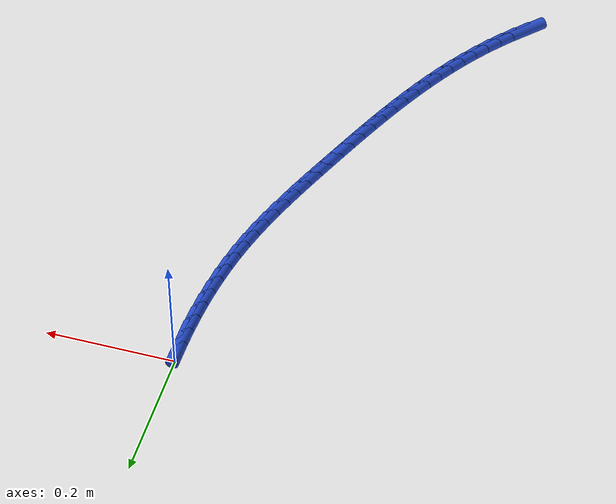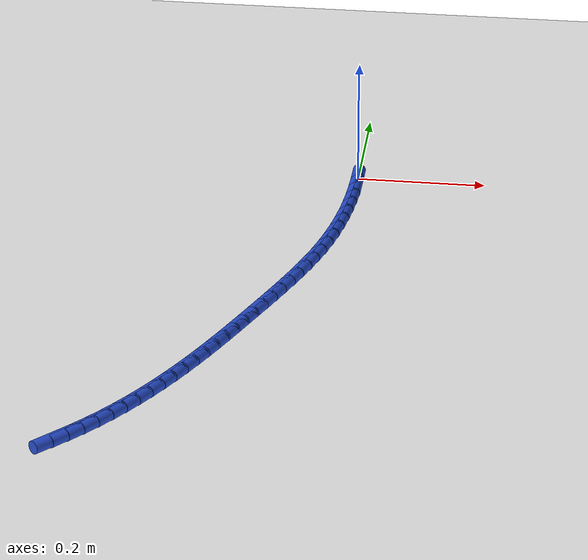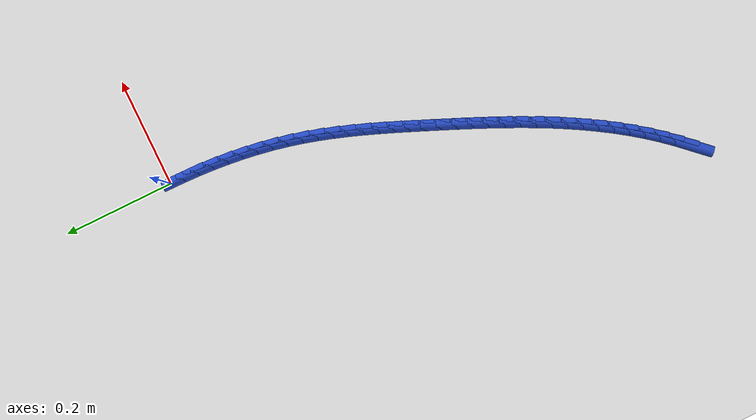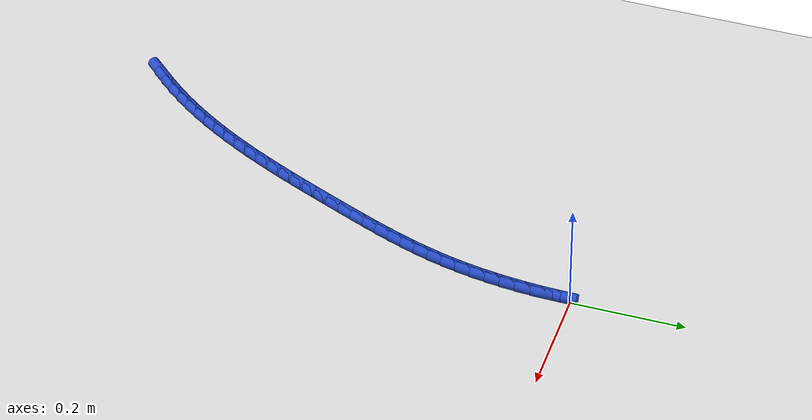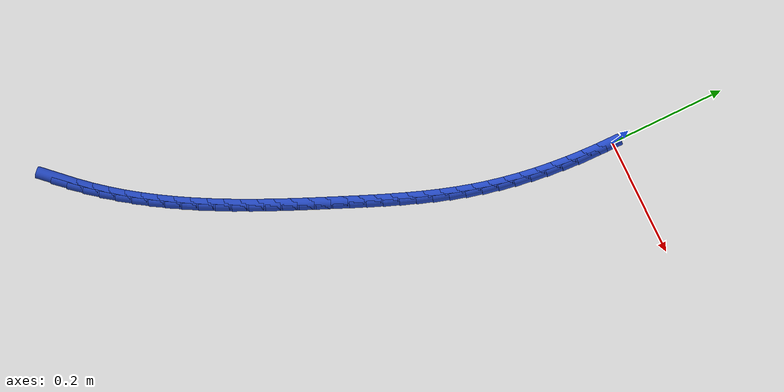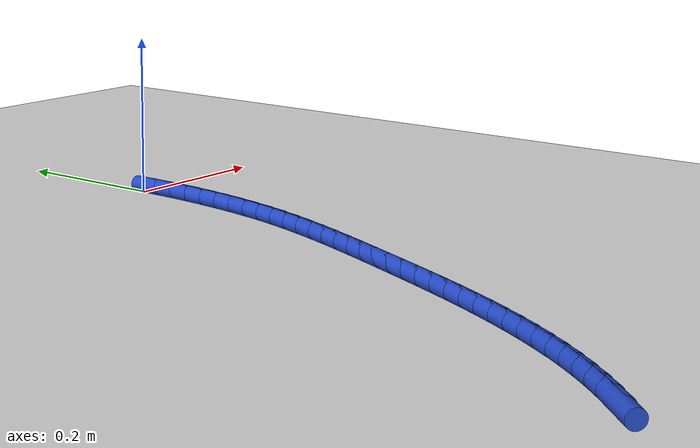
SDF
<sdf version="1.6">
 <world name="default">
  <model name="ground_plane">
   <static>1</static>
   <link name="link">
    <collision name="collision">
     <geometry><plane><normal>0 0 1</normal><size>100 100</size></plane></geometry>
     <surface><friction><ode><mu>100</mu><mu2>50</mu2></ode></friction></surface>
    </collision>
    <visual name="visual">
     <cast_shadows>0</cast_shadows>
     <geometry><plane><normal>0 0 1</normal><size>100 100</size></plane></geometry>
     <material>
      <script><uri>file://media/materials/scripts/gazebo.material</uri><name>Gazebo/WhiteGlow</name></script>
     </material>
    </visual>
   </link>
  </model>
  <model name="line">
   <link name="link_236">
    <pose>-0.34181940846527276 -0.8490513845991398 0.01 0 1.57 0.8167684196229954</pose>
    <collision name="collision">
     <geometry><cylinder><radius>0.01</radius><length>0.08</length></cylinder></geometry>
    </collision>
    <visual name="visual">
     <material>
      <script><name>Gazebo/Blue</name><uri>file://media/materials/scripts/gazebo.material</uri></script>
     </material>
     <geometry><cylinder><radius>0.01</radius><length>0.08</length></cylinder></geometry>
    </visual>
   </link>
   <link name="link_237">
    <pose>-0.3230266619147617 -0.8290409735959221 0.01 0 1.57 0.8541679968650098</pose>
    <collision name="collision">
     <geometry><cylinder><radius>0.01</radius><length>0.08</length></cylinder></geometry>
    </collision>
    <visual name="visual">
     <material>
      <script><name>Gazebo/Blue</name><uri>file://media/materials/scripts/gazebo.material</uri></script>
     </material>
     <geometry><cylinder><radius>0.01</radius><length>0.08</length></cylinder></geometry>
    </visual>
   </link>
   <link name="link_238">
    <pose>-0.30504572499653865 -0.8083998059912345 0.01 0 1.57 0.891576402129632</pose>
    <collision name="collision">
     <geometry><cylinder><radius>0.01</radius><length>0.08</length></cylinder></geometry>
    </collision>
    <visual name="visual">
     <material>
      <script><name>Gazebo/Blue</name><uri>file://media/materials/scripts/gazebo.material</uri></script>
     </material>
     <geometry><cylinder><radius>0.01</radius><length>0.08</length></cylinder></geometry>
    </visual>
   </link>
   <link name="link_239">
    <pose>-0.2878918184934379 -0.7871532101299038 0.01 0 1.57 0.9269379818281537</pose>
    <collision name="collision">
     <geometry><cylinder><radius>0.01</radius><length>0.08</length></cylinder></geometry>
    </collision>
    <visual name="visual">
     <material>
      <script><name>Gazebo/Blue</name><uri>file://media/materials/scripts/gazebo.material</uri></script>
     </material>
     <geometry><cylinder><radius>0.01</radius><length>0.08</length></cylinder></geometry>
    </visual>
   </link>
   <link name="link_240">
    <pose>-0.2715205809055562 -0.7653411311631899 0.01 0 1.57 0.959927906330278</pose>
    <collision name="collision">
     <geometry><cylinder><radius>0.01</radius><length>0.08</length></cylinder></geometry>
    </collision>
    <visual name="visual">
     <material>
      <script><name>Gazebo/Blue</name><uri>file://media/materials/scripts/gazebo.material</uri></script>
     </material>
     <geometry><cylinder><radius>0.01</radius><length>0.08</length></cylinder></geometry>
    </visual>
   </link>
   <link name="link_241">
    <pose>-0.2558807010170571 -0.7430052191560962 0.01 0 1.57 0.990485544237987</pose>
    <collision name="collision">
     <geometry><cylinder><radius>0.01</radius><length>0.08</length></cylinder></geometry>
    </collision>
    <visual name="visual">
     <material>
      <script><name>Gazebo/Blue</name><uri>file://media/materials/scripts/gazebo.material</uri></script>
     </material>
     <geometry><cylinder><radius>0.01</radius><length>0.08</length></cylinder></geometry>
    </visual>
   </link>
   <link name="link_242">
    <pose>-0.2409208676121022 -0.7201871241736246 0.01 0 1.57 1.0185772041213839</pose>
    <collision name="collision">
     <geometry><cylinder><radius>0.01</radius><length>0.08</length></cylinder></geometry>
    </collision>
    <visual name="visual">
     <material>
      <script><name>Gazebo/Blue</name><uri>file://media/materials/scripts/gazebo.material</uri></script>
     </material>
     <geometry><cylinder><radius>0.01</radius><length>0.08</length></cylinder></geometry>
    </visual>
   </link>
   <link name="link_243">
    <pose>-0.22658976947485485 -0.6969284962807786 0.01 0 1.57 1.0441909365308386</pose>
    <collision name="collision">
     <geometry><cylinder><radius>0.01</radius><length>0.08</length></cylinder></geometry>
    </collision>
    <visual name="visual">
     <material>
      <script><name>Gazebo/Blue</name><uri>file://media/materials/scripts/gazebo.material</uri></script>
     </material>
     <geometry><cylinder><radius>0.01</radius><length>0.08</length></cylinder></geometry>
    </visual>
   </link>
   <link name="link_244">
    <pose>-0.21283609538947673 -0.6732709855425595 0.01 0 1.57 1.0673314357004413</pose>
    <collision name="collision">
     <geometry><cylinder><radius>0.01</radius><length>0.08</length></cylinder></geometry>
    </collision>
    <visual name="visual">
     <material>
      <script><name>Gazebo/Blue</name><uri>file://media/materials/scripts/gazebo.material</uri></script>
     </material>
     <geometry><cylinder><radius>0.01</radius><length>0.08</length></cylinder></geometry>
    </visual>
   </link>
   <link name="link_245">
    <pose>-0.19960853414013133 -0.6492562420239715 0.01 0 1.57 1.0880152814232855</pose>
    <collision name="collision">
     <geometry><cylinder><radius>0.01</radius><length>0.08</length></cylinder></geometry>
    </collision>
    <visual name="visual">
     <material>
      <script><name>Gazebo/Blue</name><uri>file://media/materials/scripts/gazebo.material</uri></script>
     </material>
     <geometry><cylinder><radius>0.01</radius><length>0.08</length></cylinder></geometry>
    </visual>
   </link>
   <link name="link_246">
    <pose>-0.18685577451098048 -0.6249259157900161 0.01 0 1.57 1.106266665418751</pose>
    <collision name="collision">
     <geometry><cylinder><radius>0.01</radius><length>0.08</length></cylinder></geometry>
    </collision>
    <visual name="visual">
     <material>
      <script><name>Gazebo/Blue</name><uri>file://media/materials/scripts/gazebo.material</uri></script>
     </material>
     <geometry><cylinder><radius>0.01</radius><length>0.08</length></cylinder></geometry>
    </visual>
   </link>
   <link name="link_247">
    <pose>-0.17452650528618655 -0.6003216569056957 0.01 0 1.57 1.1221136691704743</pose>
    <collision name="collision">
     <geometry><cylinder><radius>0.01</radius><length>0.08</length></cylinder></geometry>
    </collision>
    <visual name="visual">
     <material>
      <script><name>Gazebo/Blue</name><uri>file://media/materials/scripts/gazebo.material</uri></script>
     </material>
     <geometry><cylinder><radius>0.01</radius><length>0.08</length></cylinder></geometry>
    </visual>
   </link>
   <link name="link_248">
    <pose>-0.1625694152499127 -0.575485115436014 0.01 0 1.57 1.1355851038012434</pose>
    <collision name="collision">
     <geometry><cylinder><radius>0.01</radius><length>0.08</length></cylinder></geometry>
    </collision>
    <visual name="visual">
     <material>
      <script><name>Gazebo/Blue</name><uri>file://media/materials/scripts/gazebo.material</uri></script>
     </material>
     <geometry><cylinder><radius>0.01</radius><length>0.08</length></cylinder></geometry>
    </visual>
   </link>
   <link name="link_249">
    <pose>-0.1509331931863208 -0.5504579414459724 0.01 0 1.57 1.146707885626396</pose>
    <collision name="collision">
     <geometry><cylinder><radius>0.01</radius><length>0.08</length></cylinder></geometry>
    </collision>
    <visual name="visual">
     <material>
      <script><name>Gazebo/Blue</name><uri>file://media/materials/scripts/gazebo.material</uri></script>
     </material>
     <geometry><cylinder><radius>0.01</radius><length>0.08</length></cylinder></geometry>
    </visual>
   </link>
   <link name="link_250">
    <pose>-0.13956652787957402 -0.5252817850005747 0.01 0 1.57 1.1555049003821753</pose>
    <collision name="collision">
     <geometry><cylinder><radius>0.01</radius><length>0.08</length></cylinder></geometry>
    </collision>
    <visual name="visual">
     <material>
      <script><name>Gazebo/Blue</name><uri>file://media/materials/scripts/gazebo.material</uri></script>
     </material>
     <geometry><cylinder><radius>0.01</radius><length>0.08</length></cylinder></geometry>
    </visual>
   </link>
   <link name="link_251">
    <pose>-0.12841810811383425 -0.4999982961648222 0.01 0 1.57 1.1619933010624153</pose>
    <collision name="collision">
     <geometry><cylinder><radius>0.01</radius><length>0.08</length></cylinder></geometry>
    </collision>
    <visual name="visual">
     <material>
      <script><name>Gazebo/Blue</name><uri>file://media/materials/scripts/gazebo.material</uri></script>
     </material>
     <geometry><cylinder><radius>0.01</radius><length>0.08</length></cylinder></geometry>
    </visual>
   </link>
   <link name="link_252">
    <pose>-0.11743662267326459 -0.4746491250037191 0.01 0 1.57 1.1661831853941187</pose>
    <collision name="collision">
     <geometry><cylinder><radius>0.01</radius><length>0.08</length></cylinder></geometry>
    </collision>
    <visual name="visual">
     <material>
      <script><name>Gazebo/Blue</name><uri>file://media/materials/scripts/gazebo.material</uri></script>
     </material>
     <geometry><cylinder><radius>0.01</radius><length>0.08</length></cylinder></geometry>
    </visual>
   </link>
   <link name="link_253">
    <pose>-0.10657076034202703 -0.44927592158226637 0.01 0 1.57 1.169040615968772</pose>
    <collision name="collision">
     <geometry><cylinder><radius>0.01</radius><length>0.08</length></cylinder></geometry>
    </collision>
    <visual name="visual">
     <material>
      <script><name>Gazebo/Blue</name><uri>file://media/materials/scripts/gazebo.material</uri></script>
     </material>
     <geometry><cylinder><radius>0.01</radius><length>0.08</length></cylinder></geometry>
    </visual>
   </link>
   <link name="link_254">
    <pose>-0.09579304077388741 -0.4239084823200505 0.01 0 1.57 1.1746513240406393</pose>
    <collision name="collision">
     <geometry><cylinder><radius>0.01</radius><length>0.08</length></cylinder></geometry>
    </collision>
    <visual name="visual">
     <material>
      <script><name>Gazebo/Blue</name><uri>file://media/materials/scripts/gazebo.material</uri></script>
     </material>
     <geometry><cylinder><radius>0.01</radius><length>0.08</length></cylinder></geometry>
    </visual>
   </link>
   <link name="link_255">
    <pose>-0.0851768361915821 -0.39852643884569483 0.01 0 1.57 1.184117697722169</pose>
    <collision name="collision">
     <geometry><cylinder><radius>0.01</radius><length>0.08</length></cylinder></geometry>
    </collision>
    <visual name="visual">
     <material>
      <script><name>Gazebo/Blue</name><uri>file://media/materials/scripts/gazebo.material</uri></script>
     </material>
     <geometry><cylinder><radius>0.01</radius><length>0.08</length></cylinder></geometry>
    </visual>
   </link>
   <link name="link_256">
    <pose>-0.07482219347670267 -0.37309615462124285 0.01 0 1.57 1.1974682515125572</pose>
    <collision name="collision">
     <geometry><cylinder><radius>0.01</radius><length>0.08</length></cylinder></geometry>
    </collision>
    <visual name="visual">
     <material>
      <script><name>Gazebo/Blue</name><uri>file://media/materials/scripts/gazebo.material</uri></script>
     </material>
     <geometry><cylinder><radius>0.01</radius><length>0.08</length></cylinder></geometry>
    </visual>
   </link>
   <link name="link_257">
    <pose>-0.06482915967821153 -0.3475839930254844 0.01 0 1.57 1.2147309669790078</pose>
    <collision name="collision">
     <geometry><cylinder><radius>0.01</radius><length>0.08</length></cylinder></geometry>
    </collision>
    <visual name="visual">
     <material>
      <script><name>Gazebo/Blue</name><uri>file://media/materials/scripts/gazebo.material</uri></script>
     </material>
     <geometry><cylinder><radius>0.01</radius><length>0.08</length></cylinder></geometry>
    </visual>
   </link>
   <link name="link_258">
    <pose>-0.05529778184507103 -0.32195631743720904 0.01 0 1.57 1.2359272174514502</pose>
    <collision name="collision">
     <geometry><cylinder><radius>0.01</radius><length>0.08</length></cylinder></geometry>
    </collision>
    <visual name="visual">
     <material>
      <script><name>Gazebo/Blue</name><uri>file://media/materials/scripts/gazebo.material</uri></script>
     </material>
     <geometry><cylinder><radius>0.01</radius><length>0.08</length></cylinder></geometry>
    </visual>
   </link>
   <link name="link_259">
    <pose>-0.046328107026244444 -0.2961794912352086 0.01 0 1.57 1.2610637347822296</pose>
    <collision name="collision">
     <geometry><cylinder><radius>0.01</radius><length>0.08</length></cylinder></geometry>
    </collision>
    <visual name="visual">
     <material>
      <script><name>Gazebo/Blue</name><uri>file://media/materials/scripts/gazebo.material</uri></script>
     </material>
     <geometry><cylinder><radius>0.01</radius><length>0.08</length></cylinder></geometry>
    </visual>
   </link>
   <link name="link_260">
    <pose>-0.03802018227069392 -0.2702198777982721 0.01 0 1.57 1.2901226898205733</pose>
    <collision name="collision">
     <geometry><cylinder><radius>0.01</radius><length>0.08</length></cylinder></geometry>
    </collision>
    <visual name="visual">
     <material>
      <script><name>Gazebo/Blue</name><uri>file://media/materials/scripts/gazebo.material</uri></script>
     </material>
     <geometry><cylinder><radius>0.01</radius><length>0.08</length></cylinder></geometry>
    </visual>
   </link>
   <link name="link_261">
    <pose>-0.030474054627382653 -0.24404384050519154 0.01 0 1.57 1.322946727970461</pose>
    <collision name="collision">
     <geometry><cylinder><radius>0.01</radius><length>0.08</length></cylinder></geometry>
    </collision>
    <visual name="visual">
     <material>
      <script><name>Gazebo/Blue</name><uri>file://media/materials/scripts/gazebo.material</uri></script>
     </material>
     <geometry><cylinder><radius>0.01</radius><length>0.08</length></cylinder></geometry>
    </visual>
   </link>
   <link name="link_262">
    <pose>-0.02378719612678568 -0.21761906030910658 0.01 0 1.57 1.3569751491219755</pose>
    <collision name="collision">
     <geometry><cylinder><radius>0.01</radius><length>0.08</length></cylinder></geometry>
    </collision>
    <visual name="visual">
     <material>
      <script><name>Gazebo/Blue</name><uri>file://media/materials/scripts/gazebo.material</uri></script>
     </material>
     <geometry><cylinder><radius>0.01</radius><length>0.08</length></cylinder></geometry>
    </visual>
   </link>
   <link name="link_263">
    <pose>-0.017995156332370605 -0.19094490238395145 0.01 0 1.57 1.389656966216681</pose>
    <collision name="collision">
     <geometry><cylinder><radius>0.01</radius><length>0.08</length></cylinder></geometry>
    </collision>
    <visual name="visual">
     <material>
      <script><name>Gazebo/Blue</name><uri>file://media/materials/scripts/gazebo.material</uri></script>
     </material>
     <geometry><cylinder><radius>0.01</radius><length>0.08</length></cylinder></geometry>
    </visual>
   </link>
   <link name="link_264">
    <pose>-0.013070025855606916 -0.16405320230645876 0.01 0 1.57 1.420908767973243</pose>
    <collision name="collision">
     <geometry><cylinder><radius>0.01</radius><length>0.08</length></cylinder></geometry>
    </collision>
    <visual name="visual">
     <material>
      <script><name>Gazebo/Blue</name><uri>file://media/materials/scripts/gazebo.material</uri></script>
     </material>
     <geometry><cylinder><radius>0.01</radius><length>0.08</length></cylinder></geometry>
    </visual>
   </link>
   <link name="link_265">
    <pose>-0.008981012934607272 -0.13697727049372935 0.01 0 1.57 1.4507713031801635</pose>
    <collision name="collision">
     <geometry><cylinder><radius>0.01</radius><length>0.08</length></cylinder></geometry>
    </collision>
    <visual name="visual">
     <material>
      <script><name>Gazebo/Blue</name><uri>file://media/materials/scripts/gazebo.material</uri></script>
     </material>
     <geometry><cylinder><radius>0.01</radius><length>0.08</length></cylinder></geometry>
    </visual>
   </link>
   <link name="link_266">
    <pose>-0.005697325807483785 -0.10975041736286119 0.01 0 1.57 1.4792916607425237</pose>
    <collision name="collision">
     <geometry><cylinder><radius>0.01</radius><length>0.08</length></cylinder></geometry>
    </collision>
    <visual name="visual">
     <material>
      <script><name>Gazebo/Blue</name><uri>file://media/materials/scripts/gazebo.material</uri></script>
     </material>
     <geometry><cylinder><radius>0.01</radius><length>0.08</length></cylinder></geometry>
    </visual>
   </link>
   <link name="link_267">
    <pose>-0.0031881727123490174 -0.08240595333095532 0.01 0 1.57 1.5065215019289884</pose>
    <collision name="collision">
     <geometry><cylinder><radius>0.01</radius><length>0.08</length></cylinder></geometry>
    </collision>
    <visual name="visual">
     <material>
      <script><name>Gazebo/Blue</name><uri>file://media/materials/scripts/gazebo.material</uri></script>
     </material>
     <geometry><cylinder><radius>0.01</radius><length>0.08</length></cylinder></geometry>
    </visual>
   </link>
   <link name="link_268">
    <pose>-0.0014227618873152218 -0.05497718881511035 0.01 0 1.57 1.5325155566537452</pose>
    <collision name="collision">
     <geometry><cylinder><radius>0.01</radius><length>0.08</length></cylinder></geometry>
    </collision>
    <visual name="visual">
     <material>
      <script><name>Gazebo/Blue</name><uri>file://media/materials/scripts/gazebo.material</uri></script>
     </material>
     <geometry><cylinder><radius>0.01</radius><length>0.08</length></cylinder></geometry>
    </visual>
   </link>
   <link name="link_269">
    <pose>-0.0003703015704947391 -0.02749743423242486 0.01 0 1.57 1.5573303726772851</pose>
    <collision name="collision">
     <geometry><cylinder><radius>0.01</radius><length>0.08</length></cylinder></geometry>
    </collision>
    <visual name="visual">
     <material>
      <script><name>Gazebo/Blue</name><uri>file://media/materials/scripts/gazebo.material</uri></script>
     </material>
     <geometry><cylinder><radius>0.01</radius><length>0.08</length></cylinder></geometry>
    </visual>
   </link>
  </model>
 </world>
</sdf>
